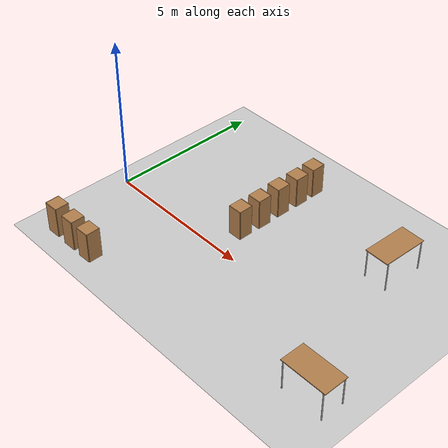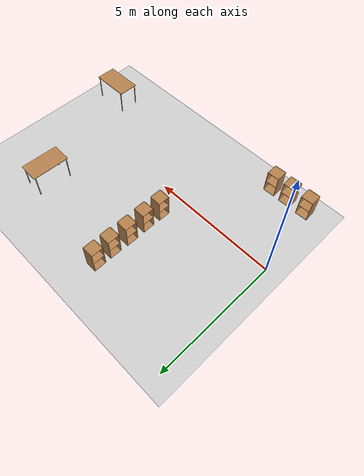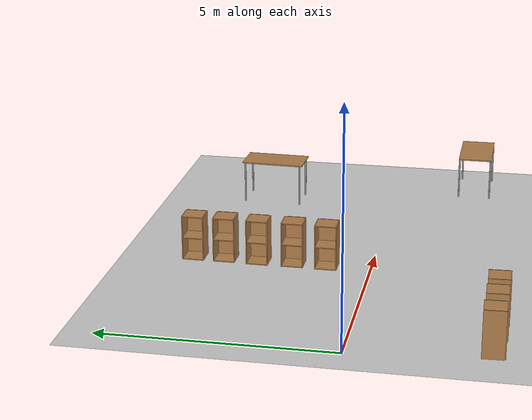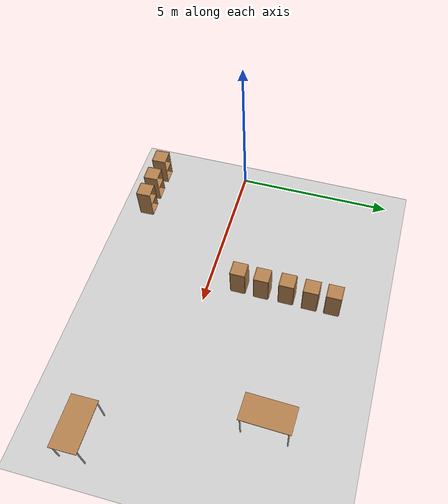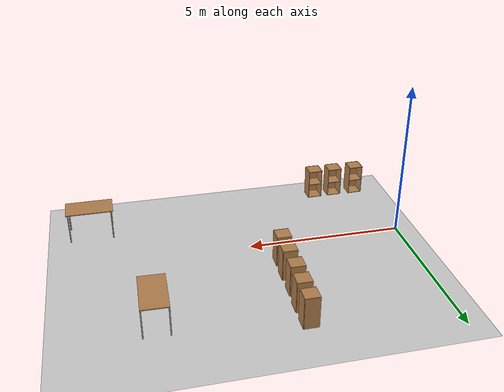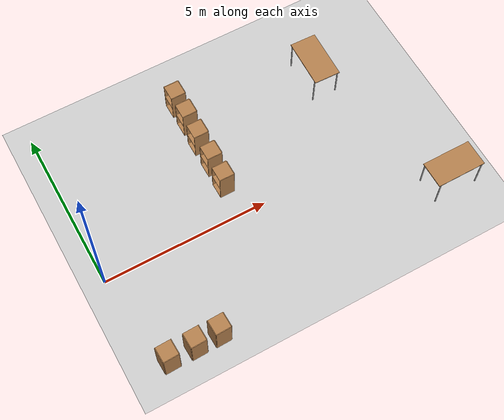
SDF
<sdf version="1.6">
 <world name="default">
  <model name="ground_plane">
   <static>1</static>
   <link name="link">
    <collision name="collision">
     <geometry><plane><normal>0 0 1</normal><size>100 100</size></plane></geometry>
     <surface><friction><ode><mu>100</mu><mu2>50</mu2></ode></friction></surface>
    </collision>
    <visual name="visual">
     <cast_shadows>0</cast_shadows>
     <geometry><plane><normal>0 0 1</normal><size>100 100</size></plane></geometry>
     <material>
      <script><uri>file://media/materials/scripts/gazebo.material</uri><name>Gazebo/Grey</name></script>
     </material>
    </visual>
   </link>
  </model>
  <model name="cabinet">
   <static>1</static>
   <link name="cabinet_bottom_plate">
    <inertial>
     <pose>0 0 -1 0 -0 0</pose>
     <inertia><ixx>2.05</ixx><ixy>0</ixy><ixz>0</ixz><iyy>2.05</iyy><iyz>0</iyz><izz>2.05</izz></inertia>
     <mass>25</mass>
    </inertial>
    <collision name="cabinet_bottom_plate_geom">
     <pose>0 0 0.01 0 -0 0</pose>
     <geometry><box><size>0.45 0.45 0.02</size></box></geometry>
    </collision>
    <visual name="cabinet_bottom_plate_geom_visual">
     <pose>0 0 0.01 0 -0 0</pose>
     <geometry><box><size>0.45 0.45 0.02</size></box></geometry>
     <material>
      <script><uri>file://media/materials/scripts/gazebo.material</uri><name>Gazebo/Wood</name></script>
     </material>
    </visual>
    <collision name="cabinet_bottom_plate_geom_cabinet_back_plate">
     <pose>0.235 0 0.51 0 -0 0</pose>
     <geometry><box><size>0.02 0.45 1.02</size></box></geometry>
    </collision>
    <visual name="cabinet_bottom_plate_geom_cabinet_back_plate_visual">
     <pose>0.235 0 0.51 0 -0 0</pose>
     <geometry><box><size>0.02 0.45 1.02</size></box></geometry>
     <material>
      <script><uri>file://media/materials/scripts/gazebo.material</uri><name>Gazebo/Wood</name></script>
     </material>
    </visual>
    <collision name="cabinet_bottom_plate_geom_cabinet_left_plate">
     <pose>0 0.235 0.51 0 -0 0</pose>
     <geometry><box><size>0.45 0.02 1.02</size></box></geometry>
    </collision>
    <visual name="cabinet_bottom_plate_geom_cabinet_left_plate_visual">
     <pose>0 0.235 0.51 0 -0 0</pose>
     <geometry><box><size>0.45 0.02 1.02</size></box></geometry>
     <material>
      <script><uri>file://media/materials/scripts/gazebo.material</uri><name>Gazebo/Wood</name></script>
     </material>
    </visual>
    <collision name="cabinet_bottom_plate_geom_cabinet_middle_plate">
     <pose>0 0 0.51 0 -0 0</pose>
     <geometry><box><size>0.45 0.45 0.02</size></box></geometry>
    </collision>
    <visual name="cabinet_bottom_plate_geom_cabinet_middle_plate_visual">
     <pose>0 0 0.51 0 -0 0</pose>
     <geometry><box><size>0.45 0.45 0.02</size></box></geometry>
     <material>
      <script><uri>file://media/materials/scripts/gazebo.material</uri><name>Gazebo/Wood</name></script>
     </material>
    </visual>
    <collision name="cabinet_bottom_plate_geom_cabinet_right_plate">
     <pose>0 -0.235 0.51 0 -0 0</pose>
     <geometry><box><size>0.45 0.02 1.02</size></box></geometry>
    </collision>
    <visual name="cabinet_bottom_plate_geom_cabinet_right_plate_visual">
     <pose>0 -0.235 0.51 0 -0 0</pose>
     <geometry><box><size>0.45 0.02 1.02</size></box></geometry>
     <material>
      <script><uri>file://media/materials/scripts/gazebo.material</uri><name>Gazebo/Wood</name></script>
     </material>
    </visual>
    <collision name="cabinet_bottom_plate_geom_cabinet_top_plate">
     <pose>0 0 1.01 0 -0 0</pose>
     <geometry><box><size>0.45 0.45 0.02</size></box></geometry>
    </collision>
    <visual name="cabinet_bottom_plate_geom_cabinet_top_plate_visual">
     <pose>0 0 1.01 0 -0 0</pose>
     <geometry><box><size>0.45 0.45 0.02</size></box></geometry>
     <material>
      <script><uri>file://media/materials/scripts/gazebo.material</uri><name>Gazebo/Wood</name></script>
     </material>
    </visual>
   </link>
   <pose>4.20674 0.984493 0 0 -0 0</pose>
  </model>
  <model name="cabinet_clone">
   <static>1</static>
   <link name="cabinet_bottom_plate">
    <inertial>
     <pose>0 0 -1 0 -0 0</pose>
     <inertia><ixx>2.05</ixx><ixy>0</ixy><ixz>0</ixz><iyy>2.05</iyy><iyz>0</iyz><izz>2.05</izz></inertia>
     <mass>25</mass>
    </inertial>
    <collision name="cabinet_bottom_plate_geom">
     <pose>0 0 0.01 0 -0 0</pose>
     <geometry><box><size>0.45 0.45 0.02</size></box></geometry>
    </collision>
    <visual name="cabinet_bottom_plate_geom_visual">
     <pose>0 0 0.01 0 -0 0</pose>
     <geometry><box><size>0.45 0.45 0.02</size></box></geometry>
     <material>
      <script><uri>file://media/materials/scripts/gazebo.material</uri><name>Gazebo/Wood</name></script>
     </material>
    </visual>
    <collision name="cabinet_bottom_plate_geom_cabinet_back_plate">
     <pose>0.235 0 0.51 0 -0 0</pose>
     <geometry><box><size>0.02 0.45 1.02</size></box></geometry>
    </collision>
    <visual name="cabinet_bottom_plate_geom_cabinet_back_plate_visual">
     <pose>0.235 0 0.51 0 -0 0</pose>
     <geometry><box><size>0.02 0.45 1.02</size></box></geometry>
     <material>
      <script><uri>file://media/materials/scripts/gazebo.material</uri><name>Gazebo/Wood</name></script>
     </material>
    </visual>
    <collision name="cabinet_bottom_plate_geom_cabinet_left_plate">
     <pose>0 0.235 0.51 0 -0 0</pose>
     <geometry><box><size>0.45 0.02 1.02</size></box></geometry>
    </collision>
    <visual name="cabinet_bottom_plate_geom_cabinet_left_plate_visual">
     <pose>0 0.235 0.51 0 -0 0</pose>
     <geometry><box><size>0.45 0.02 1.02</size></box></geometry>
     <material>
      <script><uri>file://media/materials/scripts/gazebo.material</uri><name>Gazebo/Wood</name></script>
     </material>
    </visual>
    <collision name="cabinet_bottom_plate_geom_cabinet_middle_plate">
     <pose>0 0 0.51 0 -0 0</pose>
     <geometry><box><size>0.45 0.45 0.02</size></box></geometry>
    </collision>
    <visual name="cabinet_bottom_plate_geom_cabinet_middle_plate_visual">
     <pose>0 0 0.51 0 -0 0</pose>
     <geometry><box><size>0.45 0.45 0.02</size></box></geometry>
     <material>
      <script><uri>file://media/materials/scripts/gazebo.material</uri><name>Gazebo/Wood</name></script>
     </material>
    </visual>
    <collision name="cabinet_bottom_plate_geom_cabinet_right_plate">
     <pose>0 -0.235 0.51 0 -0 0</pose>
     <geometry><box><size>0.45 0.02 1.02</size></box></geometry>
    </collision>
    <visual name="cabinet_bottom_plate_geom_cabinet_right_plate_visual">
     <pose>0 -0.235 0.51 0 -0 0</pose>
     <geometry><box><size>0.45 0.02 1.02</size></box></geometry>
     <material>
      <script><uri>file://media/materials/scripts/gazebo.material</uri><name>Gazebo/Wood</name></script>
     </material>
    </visual>
    <collision name="cabinet_bottom_plate_geom_cabinet_top_plate">
     <pose>0 0 1.01 0 -0 0</pose>
     <geometry><box><size>0.45 0.45 0.02</size></box></geometry>
    </collision>
    <visual name="cabinet_bottom_plate_geom_cabinet_top_plate_visual">
     <pose>0 0 1.01 0 -0 0</pose>
     <geometry><box><size>0.45 0.45 0.02</size></box></geometry>
     <material>
      <script><uri>file://media/materials/scripts/gazebo.material</uri><name>Gazebo/Wood</name></script>
     </material>
    </visual>
   </link>
   <pose>4.22709 1.73373 0 0 -0 0</pose>
  </model>
  <model name="cabinet_clone_0">
   <static>1</static>
   <link name="cabinet_bottom_plate">
    <inertial>
     <pose>0 0 -1 0 -0 0</pose>
     <inertia><ixx>2.05</ixx><ixy>0</ixy><ixz>0</ixz><iyy>2.05</iyy><iyz>0</iyz><izz>2.05</izz></inertia>
     <mass>25</mass>
    </inertial>
    <collision name="cabinet_bottom_plate_geom">
     <pose>0 0 0.01 0 -0 0</pose>
     <geometry><box><size>0.45 0.45 0.02</size></box></geometry>
    </collision>
    <visual name="cabinet_bottom_plate_geom_visual">
     <pose>0 0 0.01 0 -0 0</pose>
     <geometry><box><size>0.45 0.45 0.02</size></box></geometry>
     <material>
      <script><uri>file://media/materials/scripts/gazebo.material</uri><name>Gazebo/Wood</name></script>
     </material>
    </visual>
    <collision name="cabinet_bottom_plate_geom_cabinet_back_plate">
     <pose>0.235 0 0.51 0 -0 0</pose>
     <geometry><box><size>0.02 0.45 1.02</size></box></geometry>
    </collision>
    <visual name="cabinet_bottom_plate_geom_cabinet_back_plate_visual">
     <pose>0.235 0 0.51 0 -0 0</pose>
     <geometry><box><size>0.02 0.45 1.02</size></box></geometry>
     <material>
      <script><uri>file://media/materials/scripts/gazebo.material</uri><name>Gazebo/Wood</name></script>
     </material>
    </visual>
    <collision name="cabinet_bottom_plate_geom_cabinet_left_plate">
     <pose>0 0.235 0.51 0 -0 0</pose>
     <geometry><box><size>0.45 0.02 1.02</size></box></geometry>
    </collision>
    <visual name="cabinet_bottom_plate_geom_cabinet_left_plate_visual">
     <pose>0 0.235 0.51 0 -0 0</pose>
     <geometry><box><size>0.45 0.02 1.02</size></box></geometry>
     <material>
      <script><uri>file://media/materials/scripts/gazebo.material</uri><name>Gazebo/Wood</name></script>
     </material>
    </visual>
    <collision name="cabinet_bottom_plate_geom_cabinet_middle_plate">
     <pose>0 0 0.51 0 -0 0</pose>
     <geometry><box><size>0.45 0.45 0.02</size></box></geometry>
    </collision>
    <visual name="cabinet_bottom_plate_geom_cabinet_middle_plate_visual">
     <pose>0 0 0.51 0 -0 0</pose>
     <geometry><box><size>0.45 0.45 0.02</size></box></geometry>
     <material>
      <script><uri>file://media/materials/scripts/gazebo.material</uri><name>Gazebo/Wood</name></script>
     </material>
    </visual>
    <collision name="cabinet_bottom_plate_geom_cabinet_right_plate">
     <pose>0 -0.235 0.51 0 -0 0</pose>
     <geometry><box><size>0.45 0.02 1.02</size></box></geometry>
    </collision>
    <visual name="cabinet_bottom_plate_geom_cabinet_right_plate_visual">
     <pose>0 -0.235 0.51 0 -0 0</pose>
     <geometry><box><size>0.45 0.02 1.02</size></box></geometry>
     <material>
      <script><uri>file://media/materials/scripts/gazebo.material</uri><name>Gazebo/Wood</name></script>
     </material>
    </visual>
    <collision name="cabinet_bottom_plate_geom_cabinet_top_plate">
     <pose>0 0 1.01 0 -0 0</pose>
     <geometry><box><size>0.45 0.45 0.02</size></box></geometry>
    </collision>
    <visual name="cabinet_bottom_plate_geom_cabinet_top_plate_visual">
     <pose>0 0 1.01 0 -0 0</pose>
     <geometry><box><size>0.45 0.45 0.02</size></box></geometry>
     <material>
      <script><uri>file://media/materials/scripts/gazebo.material</uri><name>Gazebo/Wood</name></script>
     </material>
    </visual>
   </link>
   <pose>4.21959 2.52419 0 0 -0 0</pose>
  </model>
  <model name="cabinet_clone_1">
   <static>1</static>
   <link name="cabinet_bottom_plate">
    <inertial>
     <pose>0 0 -1 0 -0 0</pose>
     <inertia><ixx>2.05</ixx><ixy>0</ixy><ixz>0</ixz><iyy>2.05</iyy><iyz>0</iyz><izz>2.05</izz></inertia>
     <mass>25</mass>
    </inertial>
    <collision name="cabinet_bottom_plate_geom">
     <pose>0 0 0.01 0 -0 0</pose>
     <geometry><box><size>0.45 0.45 0.02</size></box></geometry>
    </collision>
    <visual name="cabinet_bottom_plate_geom_visual">
     <pose>0 0 0.01 0 -0 0</pose>
     <geometry><box><size>0.45 0.45 0.02</size></box></geometry>
     <material>
      <script><uri>file://media/materials/scripts/gazebo.material</uri><name>Gazebo/Wood</name></script>
     </material>
    </visual>
    <collision name="cabinet_bottom_plate_geom_cabinet_back_plate">
     <pose>0.235 0 0.51 0 -0 0</pose>
     <geometry><box><size>0.02 0.45 1.02</size></box></geometry>
    </collision>
    <visual name="cabinet_bottom_plate_geom_cabinet_back_plate_visual">
     <pose>0.235 0 0.51 0 -0 0</pose>
     <geometry><box><size>0.02 0.45 1.02</size></box></geometry>
     <material>
      <script><uri>file://media/materials/scripts/gazebo.material</uri><name>Gazebo/Wood</name></script>
     </material>
    </visual>
    <collision name="cabinet_bottom_plate_geom_cabinet_left_plate">
     <pose>0 0.235 0.51 0 -0 0</pose>
     <geometry><box><size>0.45 0.02 1.02</size></box></geometry>
    </collision>
    <visual name="cabinet_bottom_plate_geom_cabinet_left_plate_visual">
     <pose>0 0.235 0.51 0 -0 0</pose>
     <geometry><box><size>0.45 0.02 1.02</size></box></geometry>
     <material>
      <script><uri>file://media/materials/scripts/gazebo.material</uri><name>Gazebo/Wood</name></script>
     </material>
    </visual>
    <collision name="cabinet_bottom_plate_geom_cabinet_middle_plate">
     <pose>0 0 0.51 0 -0 0</pose>
     <geometry><box><size>0.45 0.45 0.02</size></box></geometry>
    </collision>
    <visual name="cabinet_bottom_plate_geom_cabinet_middle_plate_visual">
     <pose>0 0 0.51 0 -0 0</pose>
     <geometry><box><size>0.45 0.45 0.02</size></box></geometry>
     <material>
      <script><uri>file://media/materials/scripts/gazebo.material</uri><name>Gazebo/Wood</name></script>
     </material>
    </visual>
    <collision name="cabinet_bottom_plate_geom_cabinet_right_plate">
     <pose>0 -0.235 0.51 0 -0 0</pose>
     <geometry><box><size>0.45 0.02 1.02</size></box></geometry>
    </collision>
    <visual name="cabinet_bottom_plate_geom_cabinet_right_plate_visual">
     <pose>0 -0.235 0.51 0 -0 0</pose>
     <geometry><box><size>0.45 0.02 1.02</size></box></geometry>
     <material>
      <script><uri>file://media/materials/scripts/gazebo.material</uri><name>Gazebo/Wood</name></script>
     </material>
    </visual>
    <collision name="cabinet_bottom_plate_geom_cabinet_top_plate">
     <pose>0 0 1.01 0 -0 0</pose>
     <geometry><box><size>0.45 0.45 0.02</size></box></geometry>
    </collision>
    <visual name="cabinet_bottom_plate_geom_cabinet_top_plate_visual">
     <pose>0 0 1.01 0 -0 0</pose>
     <geometry><box><size>0.45 0.45 0.02</size></box></geometry>
     <material>
      <script><uri>file://media/materials/scripts/gazebo.material</uri><name>Gazebo/Wood</name></script>
     </material>
    </visual>
   </link>
   <pose>4.2464 3.27815 0 0 -0 0</pose>
  </model>
  <model name="cabinet_clone_2">
   <static>1</static>
   <link name="cabinet_bottom_plate">
    <inertial>
     <pose>0 0 -1 0 -0 0</pose>
     <inertia><ixx>2.05</ixx><ixy>0</ixy><ixz>0</ixz><iyy>2.05</iyy><iyz>0</iyz><izz>2.05</izz></inertia>
     <mass>25</mass>
    </inertial>
    <collision name="cabinet_bottom_plate_geom">
     <pose>0 0 0.01 0 -0 0</pose>
     <geometry><box><size>0.45 0.45 0.02</size></box></geometry>
    </collision>
    <visual name="cabinet_bottom_plate_geom_visual">
     <pose>0 0 0.01 0 -0 0</pose>
     <geometry><box><size>0.45 0.45 0.02</size></box></geometry>
     <material>
      <script><uri>file://media/materials/scripts/gazebo.material</uri><name>Gazebo/Wood</name></script>
     </material>
    </visual>
    <collision name="cabinet_bottom_plate_geom_cabinet_back_plate">
     <pose>0.235 0 0.51 0 -0 0</pose>
     <geometry><box><size>0.02 0.45 1.02</size></box></geometry>
    </collision>
    <visual name="cabinet_bottom_plate_geom_cabinet_back_plate_visual">
     <pose>0.235 0 0.51 0 -0 0</pose>
     <geometry><box><size>0.02 0.45 1.02</size></box></geometry>
     <material>
      <script><uri>file://media/materials/scripts/gazebo.material</uri><name>Gazebo/Wood</name></script>
     </material>
    </visual>
    <collision name="cabinet_bottom_plate_geom_cabinet_left_plate">
     <pose>0 0.235 0.51 0 -0 0</pose>
     <geometry><box><size>0.45 0.02 1.02</size></box></geometry>
    </collision>
    <visual name="cabinet_bottom_plate_geom_cabinet_left_plate_visual">
     <pose>0 0.235 0.51 0 -0 0</pose>
     <geometry><box><size>0.45 0.02 1.02</size></box></geometry>
     <material>
      <script><uri>file://media/materials/scripts/gazebo.material</uri><name>Gazebo/Wood</name></script>
     </material>
    </visual>
    <collision name="cabinet_bottom_plate_geom_cabinet_middle_plate">
     <pose>0 0 0.51 0 -0 0</pose>
     <geometry><box><size>0.45 0.45 0.02</size></box></geometry>
    </collision>
    <visual name="cabinet_bottom_plate_geom_cabinet_middle_plate_visual">
     <pose>0 0 0.51 0 -0 0</pose>
     <geometry><box><size>0.45 0.45 0.02</size></box></geometry>
     <material>
      <script><uri>file://media/materials/scripts/gazebo.material</uri><name>Gazebo/Wood</name></script>
     </material>
    </visual>
    <collision name="cabinet_bottom_plate_geom_cabinet_right_plate">
     <pose>0 -0.235 0.51 0 -0 0</pose>
     <geometry><box><size>0.45 0.02 1.02</size></box></geometry>
    </collision>
    <visual name="cabinet_bottom_plate_geom_cabinet_right_plate_visual">
     <pose>0 -0.235 0.51 0 -0 0</pose>
     <geometry><box><size>0.45 0.02 1.02</size></box></geometry>
     <material>
      <script><uri>file://media/materials/scripts/gazebo.material</uri><name>Gazebo/Wood</name></script>
     </material>
    </visual>
    <collision name="cabinet_bottom_plate_geom_cabinet_top_plate">
     <pose>0 0 1.01 0 -0 0</pose>
     <geometry><box><size>0.45 0.45 0.02</size></box></geometry>
    </collision>
    <visual name="cabinet_bottom_plate_geom_cabinet_top_plate_visual">
     <pose>0 0 1.01 0 -0 0</pose>
     <geometry><box><size>0.45 0.45 0.02</size></box></geometry>
     <material>
      <script><uri>file://media/materials/scripts/gazebo.material</uri><name>Gazebo/Wood</name></script>
     </material>
    </visual>
   </link>
   <pose>4.24329 3.98234 0 0 -0 0</pose>
  </model>
  <model name="cabinet_0">
   <static>1</static>
   <link name="cabinet_bottom_plate">
    <inertial>
     <pose>0 0 -1 0 -0 0</pose>
     <inertia><ixx>2.05</ixx><ixy>0</ixy><ixz>0</ixz><iyy>2.05</iyy><iyz>0</iyz><izz>2.05</izz></inertia>
     <mass>25</mass>
    </inertial>
    <collision name="cabinet_bottom_plate_geom">
     <pose>0 0 0.01 0 -0 0</pose>
     <geometry><box><size>0.45 0.45 0.02</size></box></geometry>
    </collision>
    <visual name="cabinet_bottom_plate_geom_visual">
     <pose>0 0 0.01 0 -0 0</pose>
     <geometry><box><size>0.45 0.45 0.02</size></box></geometry>
     <material>
      <script><uri>file://media/materials/scripts/gazebo.material</uri><name>Gazebo/Wood</name></script>
     </material>
    </visual>
    <collision name="cabinet_bottom_plate_geom_cabinet_back_plate">
     <pose>0.235 0 0.51 0 -0 0</pose>
     <geometry><box><size>0.02 0.45 1.02</size></box></geometry>
    </collision>
    <visual name="cabinet_bottom_plate_geom_cabinet_back_plate_visual">
     <pose>0.235 0 0.51 0 -0 0</pose>
     <geometry><box><size>0.02 0.45 1.02</size></box></geometry>
     <material>
      <script><uri>file://media/materials/scripts/gazebo.material</uri><name>Gazebo/Wood</name></script>
     </material>
    </visual>
    <collision name="cabinet_bottom_plate_geom_cabinet_left_plate">
     <pose>0 0.235 0.51 0 -0 0</pose>
     <geometry><box><size>0.45 0.02 1.02</size></box></geometry>
    </collision>
    <visual name="cabinet_bottom_plate_geom_cabinet_left_plate_visual">
     <pose>0 0.235 0.51 0 -0 0</pose>
     <geometry><box><size>0.45 0.02 1.02</size></box></geometry>
     <material>
      <script><uri>file://media/materials/scripts/gazebo.material</uri><name>Gazebo/Wood</name></script>
     </material>
    </visual>
    <collision name="cabinet_bottom_plate_geom_cabinet_middle_plate">
     <pose>0 0 0.51 0 -0 0</pose>
     <geometry><box><size>0.45 0.45 0.02</size></box></geometry>
    </collision>
    <visual name="cabinet_bottom_plate_geom_cabinet_middle_plate_visual">
     <pose>0 0 0.51 0 -0 0</pose>
     <geometry><box><size>0.45 0.45 0.02</size></box></geometry>
     <material>
      <script><uri>file://media/materials/scripts/gazebo.material</uri><name>Gazebo/Wood</name></script>
     </material>
    </visual>
    <collision name="cabinet_bottom_plate_geom_cabinet_right_plate">
     <pose>0 -0.235 0.51 0 -0 0</pose>
     <geometry><box><size>0.45 0.02 1.02</size></box></geometry>
    </collision>
    <visual name="cabinet_bottom_plate_geom_cabinet_right_plate_visual">
     <pose>0 -0.235 0.51 0 -0 0</pose>
     <geometry><box><size>0.45 0.02 1.02</size></box></geometry>
     <material>
      <script><uri>file://media/materials/scripts/gazebo.material</uri><name>Gazebo/Wood</name></script>
     </material>
    </visual>
    <collision name="cabinet_bottom_plate_geom_cabinet_top_plate">
     <pose>0 0 1.01 0 -0 0</pose>
     <geometry><box><size>0.45 0.45 0.02</size></box></geometry>
    </collision>
    <visual name="cabinet_bottom_plate_geom_cabinet_top_plate_visual">
     <pose>0 0 1.01 0 -0 0</pose>
     <geometry><box><size>0.45 0.45 0.02</size></box></geometry>
     <material>
      <script><uri>file://media/materials/scripts/gazebo.material</uri><name>Gazebo/Wood</name></script>
     </material>
    </visual>
   </link>
   <pose>2.01714 -2.86777 0 0 0 -1.54193</pose>
  </model>
  <model name="cabinet_0_clone">
   <static>1</static>
   <link name="cabinet_bottom_plate">
    <inertial>
     <pose>0 0 -1 0 -0 0</pose>
     <inertia><ixx>2.05</ixx><ixy>0</ixy><ixz>0</ixz><iyy>2.05</iyy><iyz>0</iyz><izz>2.05</izz></inertia>
     <mass>25</mass>
    </inertial>
    <collision name="cabinet_bottom_plate_geom">
     <pose>0 0 0.01 0 -0 0</pose>
     <geometry><box><size>0.45 0.45 0.02</size></box></geometry>
    </collision>
    <visual name="cabinet_bottom_plate_geom_visual">
     <pose>0 0 0.01 0 -0 0</pose>
     <geometry><box><size>0.45 0.45 0.02</size></box></geometry>
     <material>
      <script><uri>file://media/materials/scripts/gazebo.material</uri><name>Gazebo/Wood</name></script>
     </material>
    </visual>
    <collision name="cabinet_bottom_plate_geom_cabinet_back_plate">
     <pose>0.235 0 0.51 0 -0 0</pose>
     <geometry><box><size>0.02 0.45 1.02</size></box></geometry>
    </collision>
    <visual name="cabinet_bottom_plate_geom_cabinet_back_plate_visual">
     <pose>0.235 0 0.51 0 -0 0</pose>
     <geometry><box><size>0.02 0.45 1.02</size></box></geometry>
     <material>
      <script><uri>file://media/materials/scripts/gazebo.material</uri><name>Gazebo/Wood</name></script>
     </material>
    </visual>
    <collision name="cabinet_bottom_plate_geom_cabinet_left_plate">
     <pose>0 0.235 0.51 0 -0 0</pose>
     <geometry><box><size>0.45 0.02 1.02</size></box></geometry>
    </collision>
    <visual name="cabinet_bottom_plate_geom_cabinet_left_plate_visual">
     <pose>0 0.235 0.51 0 -0 0</pose>
     <geometry><box><size>0.45 0.02 1.02</size></box></geometry>
     <material>
      <script><uri>file://media/materials/scripts/gazebo.material</uri><name>Gazebo/Wood</name></script>
     </material>
    </visual>
    <collision name="cabinet_bottom_plate_geom_cabinet_middle_plate">
     <pose>0 0 0.51 0 -0 0</pose>
     <geometry><box><size>0.45 0.45 0.02</size></box></geometry>
    </collision>
    <visual name="cabinet_bottom_plate_geom_cabinet_middle_plate_visual">
     <pose>0 0 0.51 0 -0 0</pose>
     <geometry><box><size>0.45 0.45 0.02</size></box></geometry>
     <material>
      <script><uri>file://media/materials/scripts/gazebo.material</uri><name>Gazebo/Wood</name></script>
     </material>
    </visual>
    <collision name="cabinet_bottom_plate_geom_cabinet_right_plate">
     <pose>0 -0.235 0.51 0 -0 0</pose>
     <geometry><box><size>0.45 0.02 1.02</size></box></geometry>
    </collision>
    <visual name="cabinet_bottom_plate_geom_cabinet_right_plate_visual">
     <pose>0 -0.235 0.51 0 -0 0</pose>
     <geometry><box><size>0.45 0.02 1.02</size></box></geometry>
     <material>
      <script><uri>file://media/materials/scripts/gazebo.material</uri><name>Gazebo/Wood</name></script>
     </material>
    </visual>
    <collision name="cabinet_bottom_plate_geom_cabinet_top_plate">
     <pose>0 0 1.01 0 -0 0</pose>
     <geometry><box><size>0.45 0.45 0.02</size></box></geometry>
    </collision>
    <visual name="cabinet_bottom_plate_geom_cabinet_top_plate_visual">
     <pose>0 0 1.01 0 -0 0</pose>
     <geometry><box><size>0.45 0.45 0.02</size></box></geometry>
     <material>
      <script><uri>file://media/materials/scripts/gazebo.material</uri><name>Gazebo/Wood</name></script>
     </material>
    </visual>
   </link>
   <pose>1.29703 -2.87101 0 0 0 -1.54193</pose>
  </model>
  <model name="cabinet_0_clone_0">
   <static>1</static>
   <link name="cabinet_bottom_plate">
    <inertial>
     <pose>0 0 -1 0 -0 0</pose>
     <inertia><ixx>2.05</ixx><ixy>0</ixy><ixz>0</ixz><iyy>2.05</iyy><iyz>0</iyz><izz>2.05</izz></inertia>
     <mass>25</mass>
    </inertial>
    <collision name="cabinet_bottom_plate_geom">
     <pose>0 0 0.01 0 -0 0</pose>
     <geometry><box><size>0.45 0.45 0.02</size></box></geometry>
    </collision>
    <visual name="cabinet_bottom_plate_geom_visual">
     <pose>0 0 0.01 0 -0 0</pose>
     <geometry><box><size>0.45 0.45 0.02</size></box></geometry>
     <material>
      <script><uri>file://media/materials/scripts/gazebo.material</uri><name>Gazebo/Wood</name></script>
     </material>
    </visual>
    <collision name="cabinet_bottom_plate_geom_cabinet_back_plate">
     <pose>0.235 0 0.51 0 -0 0</pose>
     <geometry><box><size>0.02 0.45 1.02</size></box></geometry>
    </collision>
    <visual name="cabinet_bottom_plate_geom_cabinet_back_plate_visual">
     <pose>0.235 0 0.51 0 -0 0</pose>
     <geometry><box><size>0.02 0.45 1.02</size></box></geometry>
     <material>
      <script><uri>file://media/materials/scripts/gazebo.material</uri><name>Gazebo/Wood</name></script>
     </material>
    </visual>
    <collision name="cabinet_bottom_plate_geom_cabinet_left_plate">
     <pose>0 0.235 0.51 0 -0 0</pose>
     <geometry><box><size>0.45 0.02 1.02</size></box></geometry>
    </collision>
    <visual name="cabinet_bottom_plate_geom_cabinet_left_plate_visual">
     <pose>0 0.235 0.51 0 -0 0</pose>
     <geometry><box><size>0.45 0.02 1.02</size></box></geometry>
     <material>
      <script><uri>file://media/materials/scripts/gazebo.material</uri><name>Gazebo/Wood</name></script>
     </material>
    </visual>
    <collision name="cabinet_bottom_plate_geom_cabinet_middle_plate">
     <pose>0 0 0.51 0 -0 0</pose>
     <geometry><box><size>0.45 0.45 0.02</size></box></geometry>
    </collision>
    <visual name="cabinet_bottom_plate_geom_cabinet_middle_plate_visual">
     <pose>0 0 0.51 0 -0 0</pose>
     <geometry><box><size>0.45 0.45 0.02</size></box></geometry>
     <material>
      <script><uri>file://media/materials/scripts/gazebo.material</uri><name>Gazebo/Wood</name></script>
     </material>
    </visual>
    <collision name="cabinet_bottom_plate_geom_cabinet_right_plate">
     <pose>0 -0.235 0.51 0 -0 0</pose>
     <geometry><box><size>0.45 0.02 1.02</size></box></geometry>
    </collision>
    <visual name="cabinet_bottom_plate_geom_cabinet_right_plate_visual">
     <pose>0 -0.235 0.51 0 -0 0</pose>
     <geometry><box><size>0.45 0.02 1.02</size></box></geometry>
     <material>
      <script><uri>file://media/materials/scripts/gazebo.material</uri><name>Gazebo/Wood</name></script>
     </material>
    </visual>
    <collision name="cabinet_bottom_plate_geom_cabinet_top_plate">
     <pose>0 0 1.01 0 -0 0</pose>
     <geometry><box><size>0.45 0.45 0.02</size></box></geometry>
    </collision>
    <visual name="cabinet_bottom_plate_geom_cabinet_top_plate_visual">
     <pose>0 0 1.01 0 -0 0</pose>
     <geometry><box><size>0.45 0.45 0.02</size></box></geometry>
     <material>
      <script><uri>file://media/materials/scripts/gazebo.material</uri><name>Gazebo/Wood</name></script>
     </material>
    </visual>
   </link>
   <pose>0.506966 -2.86454 0 0 0 -1.54193</pose>
  </model>
  <model name="table_0">
   <static>1</static>
   <link name="link">
    <collision name="surface">
     <pose>0 0 1 0 -0 0</pose>
     <geometry><box><size>1.5 0.8 0.03</size></box></geometry>
     <surface><friction><ode><mu>0.6</mu><mu2>0.6</mu2></ode></friction></surface>
    </collision>
    <visual name="visual1">
     <pose>0 0 1 0 -0 0</pose>
     <geometry><box><size>1.5 0.8 0.03</size></box></geometry>
     <material>
      <script><uri>file://media/materials/scripts/gazebo.material</uri><name>Gazebo/Wood</name></script>
     </material>
    </visual>
    <collision name="front_left_leg">
     <pose>0.68 0.38 0.5 0 -0 0</pose>
     <geometry><cylinder><radius>0.02</radius><length>1</length></cylinder></geometry>
    </collision>
    <visual name="front_left_leg">
     <pose>0.68 0.38 0.5 0 -0 0</pose>
     <geometry><cylinder><radius>0.02</radius><length>1</length></cylinder></geometry>
     <material>
      <script><uri>file://media/materials/scripts/gazebo.material</uri><name>Gazebo/Grey</name></script>
     </material>
    </visual>
    <collision name="front_right_leg">
     <pose>0.68 -0.38 0.5 0 -0 0</pose>
     <geometry><cylinder><radius>0.02</radius><length>1</length></cylinder></geometry>
    </collision>
    <visual name="front_right_leg">
     <pose>0.68 -0.38 0.5 0 -0 0</pose>
     <geometry><cylinder><radius>0.02</radius><length>1</length></cylinder></geometry>
     <material>
      <script><uri>file://media/materials/scripts/gazebo.material</uri><name>Gazebo/Grey</name></script>
     </material>
    </visual>
    <collision name="back_right_leg">
     <pose>-0.68 -0.38 0.5 0 -0 0</pose>
     <geometry><cylinder><radius>0.02</radius><length>1</length></cylinder></geometry>
    </collision>
    <visual name="back_right_leg">
     <pose>-0.68 -0.38 0.5 0 -0 0</pose>
     <geometry><cylinder><radius>0.02</radius><length>1</length></cylinder></geometry>
     <material>
      <script><uri>file://media/materials/scripts/gazebo.material</uri><name>Gazebo/Grey</name></script>
     </material>
    </visual>
    <collision name="back_left_leg">
     <pose>-0.68 0.38 0.5 0 -0 0</pose>
     <geometry><cylinder><radius>0.02</radius><length>1</length></cylinder></geometry>
    </collision>
    <visual name="back_left_leg">
     <pose>-0.68 0.38 0.5 0 -0 0</pose>
     <geometry><cylinder><radius>0.02</radius><length>1</length></cylinder></geometry>
     <material>
      <script><uri>file://media/materials/scripts/gazebo.material</uri><name>Gazebo/Grey</name></script>
     </material>
    </visual>
   </link>
   <pose>9.93055 -1.91956 0 0 -0 0</pose>
  </model>
  <model name="table_clone_0">
   <static>1</static>
   <link name="link">
    <collision name="surface">
     <pose>0 0 1 0 -0 0</pose>
     <geometry><box><size>1.5 0.8 0.03</size></box></geometry>
     <surface><friction><ode><mu>0.6</mu><mu2>0.6</mu2></ode></friction></surface>
    </collision>
    <visual name="visual1">
     <pose>0 0 1 0 -0 0</pose>
     <geometry><box><size>1.5 0.8 0.03</size></box></geometry>
     <material>
      <script><uri>file://media/materials/scripts/gazebo.material</uri><name>Gazebo/Wood</name></script>
     </material>
    </visual>
    <collision name="front_left_leg">
     <pose>0.68 0.38 0.5 0 -0 0</pose>
     <geometry><cylinder><radius>0.02</radius><length>1</length></cylinder></geometry>
    </collision>
    <visual name="front_left_leg">
     <pose>0.68 0.38 0.5 0 -0 0</pose>
     <geometry><cylinder><radius>0.02</radius><length>1</length></cylinder></geometry>
     <material>
      <script><uri>file://media/materials/scripts/gazebo.material</uri><name>Gazebo/Grey</name></script>
     </material>
    </visual>
    <collision name="front_right_leg">
     <pose>0.68 -0.38 0.5 0 -0 0</pose>
     <geometry><cylinder><radius>0.02</radius><length>1</length></cylinder></geometry>
    </collision>
    <visual name="front_right_leg">
     <pose>0.68 -0.38 0.5 0 -0 0</pose>
     <geometry><cylinder><radius>0.02</radius><length>1</length></cylinder></geometry>
     <material>
      <script><uri>file://media/materials/scripts/gazebo.material</uri><name>Gazebo/Grey</name></script>
     </material>
    </visual>
    <collision name="back_right_leg">
     <pose>-0.68 -0.38 0.5 0 -0 0</pose>
     <geometry><cylinder><radius>0.02</radius><length>1</length></cylinder></geometry>
    </collision>
    <visual name="back_right_leg">
     <pose>-0.68 -0.38 0.5 0 -0 0</pose>
     <geometry><cylinder><radius>0.02</radius><length>1</length></cylinder></geometry>
     <material>
      <script><uri>file://media/materials/scripts/gazebo.material</uri><name>Gazebo/Grey</name></script>
     </material>
    </visual>
    <collision name="back_left_leg">
     <pose>-0.68 0.38 0.5 0 -0 0</pose>
     <geometry><cylinder><radius>0.02</radius><length>1</length></cylinder></geometry>
    </collision>
    <visual name="back_left_leg">
     <pose>-0.68 0.38 0.5 0 -0 0</pose>
     <geometry><cylinder><radius>0.02</radius><length>1</length></cylinder></geometry>
     <material>
      <script><uri>file://media/materials/scripts/gazebo.material</uri><name>Gazebo/Grey</name></script>
     </material>
    </visual>
   </link>
   <pose>8.34864 2.96055 0 0 0 -1.60022</pose>
  </model>
 </world>
</sdf>
